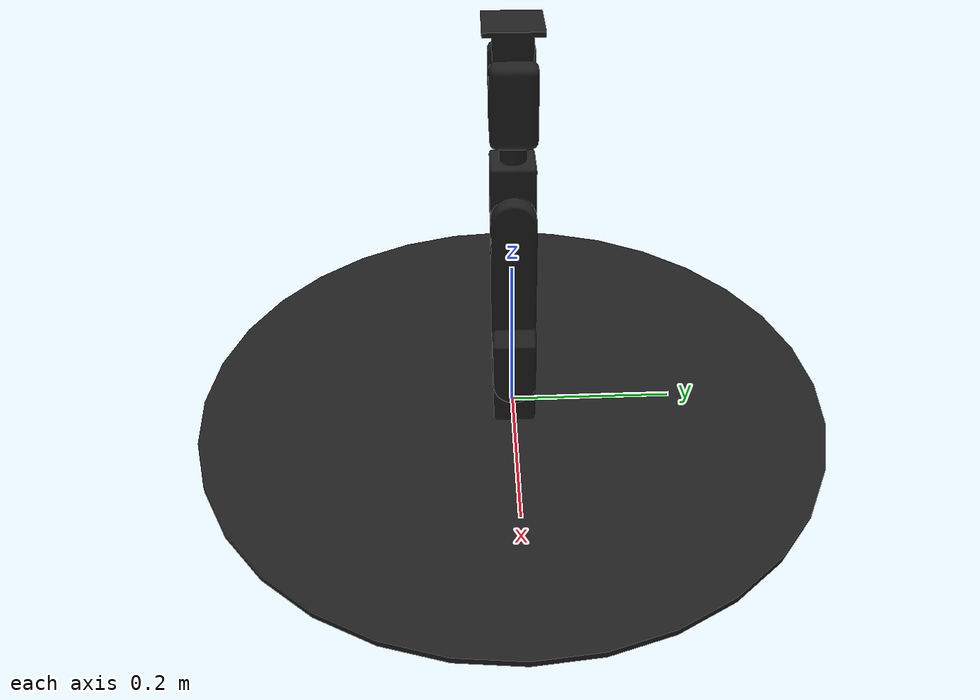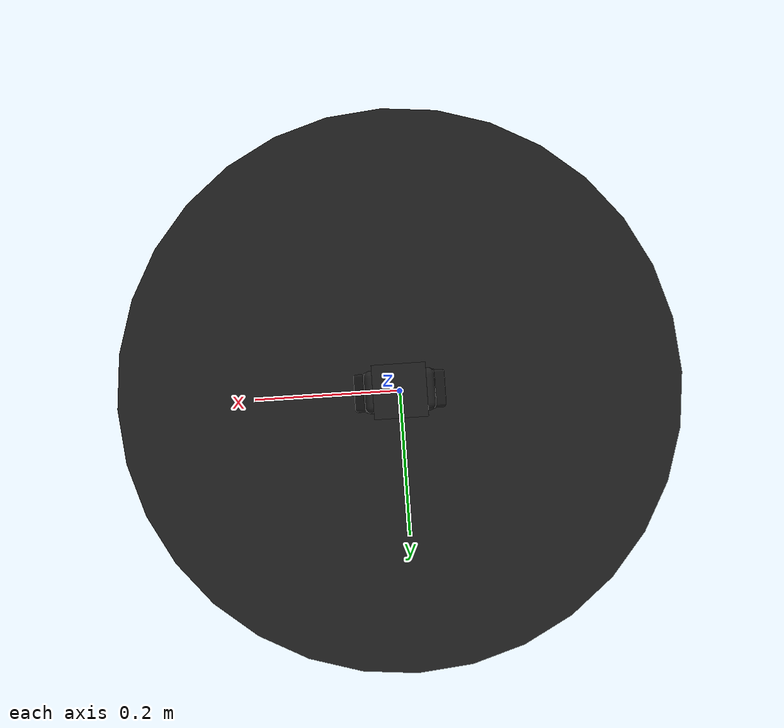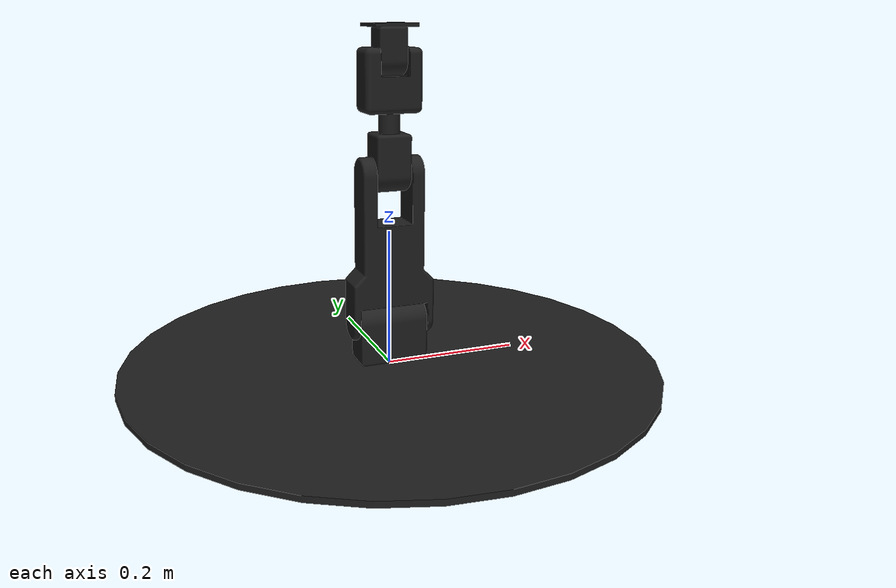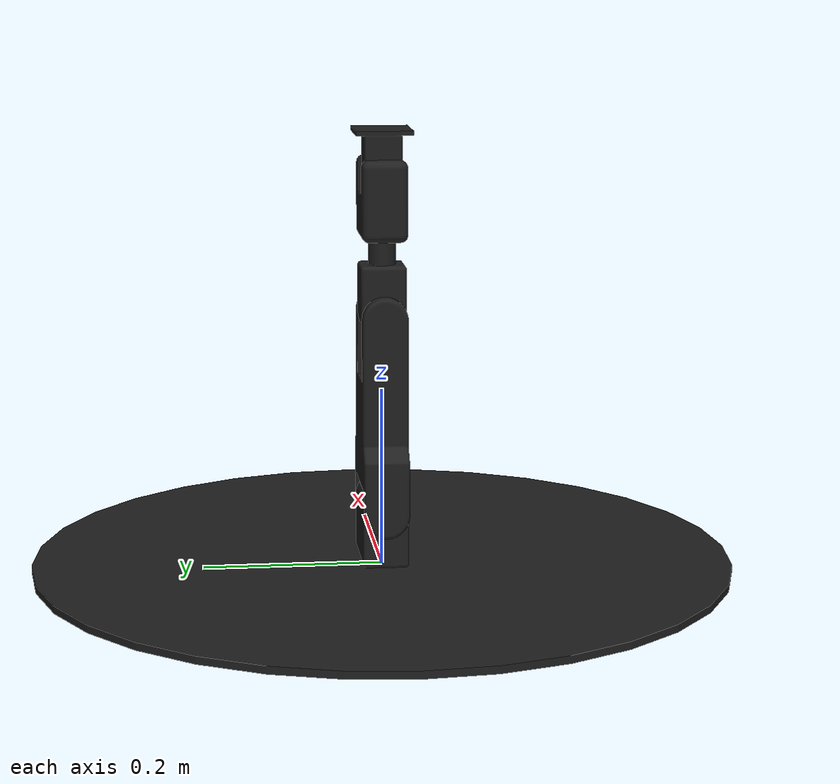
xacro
<?xml version="1.0" ?>

<robot name="oparm" xmlns:xacro="http://www.ros.org/wiki/xacro">

	<!-- BGN - Include -->
	<xacro:include filename="$(find oparm_description)/urdf/links_joints.xacro" />
	<xacro:include filename="$(find oparm_description)/urdf/robot_parameters.xacro" />

	<!-- END - Include -->

		<!-- BGN - Robot description -->
	<m_link_mesh name="${l00}"
							 origin_rpy="0 0 0" origin_xyz="0 0 0"
							 mass="0.5"
							 ixx="0.00014087" ixy="0" ixz="0"
							 iyy="0.00014087" iyz="0"
							 izz="0.00028054"
							 meshfile="package://oparm_description/meshes/oparm_base.dae"
							 meshscale="1 1 1" />

	<m_joint name="${l00}__${l01}" type="revolute"
					 axis_xyz="0 0 1"
					 origin_rpy="0 0 0.0" origin_xyz="0 0 0.0085"
					 parent="${l00}" child="${l01}"
					 limit_e="30" limit_l="-3.14" limit_u="3.14" limit_v="1.571" />
	<transmission name="trans_${l00}__${l01}">
	  <type>transmission_interface/SimpleTransmission</type>
		<joint name="${l00}__${l01}">
			<hardwareInterface>hardware_interface/EffortJointInterface</hardwareInterface>
		</joint>
		<actuator name="motor_${l00}__${l01}">
			<hardwareInterface>hardware_interface/EffortJointInterface</hardwareInterface>
			<mechanicalReduction>1</mechanicalReduction>
		</actuator>
	</transmission>

	<m_link_mesh name="${l01}"
							 origin_rpy="0 0 0" origin_xyz="0 0 0"
							 mass="0.5"
							 ixx="0.00025315" ixy="0" ixz="0"
							 iyy="0.000747" iyz="0"
							 izz="0.00070135"
							 meshfile="package://oparm_description/meshes/oparm_link01.dae"
							 meshscale="1 1 1" />

	<m_joint name="${l01}__${l02}" type="revolute"
					 axis_xyz="1 0 0"
					 origin_rpy="0 0 0.0" origin_xyz="0 0 0.06"
					 parent="${l01}" child="${l02}"
					 limit_e="30" limit_l="-1.744444444" limit_u="1.744444444" limit_v="1.571" />

	<transmission name="trans_${l01}__${l02}">
	  <type>transmission_interface/SimpleTransmission</type>
		<joint name="${l01}__${l02}">
			<hardwareInterface>hardware_interface/EffortJointInterface</hardwareInterface>
		</joint>
		<actuator name="motor_${l01}__${l02}">
			<hardwareInterface>hardware_interface/EffortJointInterface</hardwareInterface>
			<mechanicalReduction>1</mechanicalReduction>
		</actuator>
	</transmission>

	<m_link_mesh name="${l02}"
							 origin_rpy="0 0 0" origin_xyz="0 0 0"
							 mass="0.5"
							 ixx="0.002022087" ixy="0" ixz="0"
							 iyy="0.002515938" iyz="0"
							 izz="0.00070135"
							 meshfile="package://oparm_description/meshes/oparm_link02.dae"
							 meshscale="1 1 1" />

	<m_joint name="${l02}__${l03}" type="revolute"
					 axis_xyz="1 0 0"
					 origin_rpy="0 0 0.0" origin_xyz="0 0 0.215"
					 parent="${l02}" child="${l03}"
					 limit_e="30" limit_l="-2.267777778" limit_u="2.267777778" limit_v="1.571" />

	<transmission name="trans_${l02}__${l03}">
	  <type>transmission_interface/SimpleTransmission</type>
		<joint name="${l02}__${l03}">
			<hardwareInterface>hardware_interface/EffortJointInterface</hardwareInterface>
		</joint>
		<actuator name="motor_${l02}__${l03}">
			<hardwareInterface>hardware_interface/EffortJointInterface</hardwareInterface>
			<mechanicalReduction>1</mechanicalReduction>
		</actuator>
	</transmission>

	<m_link_mesh name="${l03}"
							 origin_rpy="0 0 0" origin_xyz="0 0 0"
							 mass="0.5"
							 ixx="0.000403588" ixy="0" ixz="0"
							 iyy="0.000403588" iyz="0"
							 izz="0.0002075"
							 meshfile="package://oparm_description/meshes/oparm_link03.dae"
							 meshscale="1 1 1" />

	<m_joint name="${l03}__${l04}" type="revolute"
					 axis_xyz="0 0 1"
					 origin_rpy="0 0 0.0" origin_xyz="0 0 0.085"
					 parent="${l03}" child="${l04}"
					 limit_e="30" limit_l="-3.14" limit_u="3.14" limit_v="1.571" />

	<transmission name="trans_${l03}__${l04}">
	  <type>transmission_interface/SimpleTransmission</type>
		<joint name="${l03}__${l04}">
			<hardwareInterface>hardware_interface/EffortJointInterface</hardwareInterface>
		</joint>
		<actuator name="motor_${l03}__${l04}">
			<hardwareInterface>hardware_interface/EffortJointInterface</hardwareInterface>
			<mechanicalReduction>1</mechanicalReduction>
		</actuator>
	</transmission>

	<m_link_mesh name="${l04}"
							 origin_rpy="0 0 0" origin_xyz="0 0 0"
							 mass="0.5"
							 ixx="0.000321884" ixy="0" ixz="0"
							 iyy="0.00049718" iyz="0"
							 izz="0.000382796"
							 meshfile="package://oparm_description/meshes/oparm_link04.dae"
							 meshscale="1 1 1" />

	<m_joint name="${l04}__${l05}" type="revolute"
					 axis_xyz="1 0 0"
					 origin_rpy="0 0 0.0" origin_xyz="0 0 0.0725"
					 parent="${l04}" child="${l05}"
					 limit_e="30" limit_l="-1.744444444" limit_u="1.744444444" limit_v="1.571" />

	<transmission name="trans_${l04}__${l05}">
	  <type>transmission_interface/SimpleTransmission</type>
		<joint name="${l04}__${l05}">
			<hardwareInterface>hardware_interface/EffortJointInterface</hardwareInterface>
		</joint>
		<actuator name="motor_${l04}__${l05}">
			<hardwareInterface>hardware_interface/EffortJointInterface</hardwareInterface>
			<mechanicalReduction>1</mechanicalReduction>
		</actuator>
	</transmission>

	<m_link_mesh name="${l05}"
							 origin_rpy="0 0 0" origin_xyz="0 0 0"
							 mass="1"
							 ixx="0.00025316" ixy="0" ixz="0"
							 iyy="0.00025316" iyz="0"
							 izz="0.000319052"
							 meshfile="package://oparm_description/meshes/oparm_link05.dae"
							 meshscale="1 1 1" />

	<!-- END - Robot description -->
    <gazebo>
        <plugin name="gazebo_ros_control" filename="libgazebo_ros_control.so">
        </plugin>
    </gazebo>

</robot>

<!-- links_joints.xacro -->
<robot xmlns:xacro="http://www.ros.org/wiki/xacro">

  <xacro:macro name="m_joint" params="name type axis_xyz origin_rpy origin_xyz parent child limit_e limit_l limit_u limit_v">
    <joint name="${name}" type="${type}">
      <axis xyz="${axis_xyz}" />
      <limit effort="${limit_e}" lower="${limit_l}" upper="${limit_u}" velocity="${limit_v}" />
      <origin rpy="${origin_rpy}" xyz="${origin_xyz}" />
      <parent link="${parent}" />
      <child link="${child}" />
    </joint>

    <transmission name="trans_${name}">
      <type>transmission_interface/SimpleTransmission</type>
      <joint name="${name}">
        <hardwareInterface>hardware_interface/EffortJointInterface</hardwareInterface>
      </joint>
      <actuator name="motor_${name}">
        <hardwareInterface>hardware_interface/EffortJointInterface</hardwareInterface>
        <mechanicalReduction>1</mechanicalReduction>
      </actuator>
    </transmission>
  </xacro:macro>

  <xacro:macro name="m_link_mesh" params="name origin_xyz origin_rpy meshfile meshscale mass ixx ixy ixz iyy iyz izz">
    <link name="${name}">
      <inertial>
        <mass value="${mass}" />
        <origin rpy="${origin_rpy}" xyz="${origin_xyz}" />
        <inertia ixx="${ixx}" ixy="${ixy}" ixz="${ixz}" iyy="${iyy}" iyz="${iyz}" izz="${izz}" />
      </inertial>
      <collision>
        <origin rpy="${origin_rpy}" xyz="${origin_xyz}" />
        <geometry>
          <mesh filename="${meshfile}" scale="${meshscale}"/>
        </geometry>
      </collision>
      <visual>
        <origin rpy="${origin_rpy}" xyz="${origin_xyz}" />
        <geometry>
          <mesh filename="${meshfile}" scale="${meshscale}"/>
        </geometry>
        <material name="light_black"/>
      </visual>
    </link>
  </xacro:macro>

  <xacro:macro name="m_link_box" params="name origin_xyz origin_rpy size mass ixx ixy ixz iyy iyz izz">
    <link name="${name}">
      <inertial>
        <mass value="${mass}" />
        <origin rpy="${origin_rpy}" xyz="${origin_xyz}" />
        <inertia ixx="${ixx}" ixy="${ixy}" ixz="${ixz}" iyy="${iyy}" iyz="${iyz}" izz="${izz}" />
      </inertial>
      <collision>
        <origin rpy="${origin_rpy}" xyz="${origin_xyz}" />
        <geometry>
          <box size="${size}" />
        </geometry>
      </collision>
      <visual>
        <origin rpy="${origin_rpy}" xyz="${origin_xyz}" />
        <geometry>
          <box size="${size}" />
        </geometry>
      </visual>
    </link>
  </xacro:macro>

  <xacro:macro name="m_link_cylinder" params="name origin_xyz origin_rpy radius length mass ixx ixy ixz iyy iyz izz">
    <link name="${name}">
      <inertial>
        <mass value="${mass}" />
        <origin rpy="${origin_rpy}" xyz="${origin_xyz}" />
        <inertia ixx="${ixx}" ixy="${ixy}" ixz="${ixz}" iyy="${iyy}" iyz="${iyz}" izz="${izz}" />
      </inertial>
      <collision>
        <origin rpy="${origin_rpy}" xyz="${origin_xyz}" />
        <geometry>
          <cylinder radius="${radius}" length="${length}" />
        </geometry>
      </collision>
      <visual>
        <origin rpy="${origin_rpy}" xyz="${origin_xyz}" />
        <geometry>
          <cylinder radius="${radius}" length="${length}" />
        </geometry>
      </visual>
    </link>
  </xacro:macro>

</robot>

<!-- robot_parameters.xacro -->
<robot xmlns:xacro="http://www.ros.org/wiki/xacro">
  <xacro:property name="l00" value="oparm_base" />
  <xacro:property name="l01" value="oparm_link01" />
  <xacro:property name="l02" value="oparm_link02" />
  <xacro:property name="l03" value="oparm_link03" />
  <xacro:property name="l04" value="oparm_link04" />
  <xacro:property name="l05" value="oparm_link05" />
</robot>
